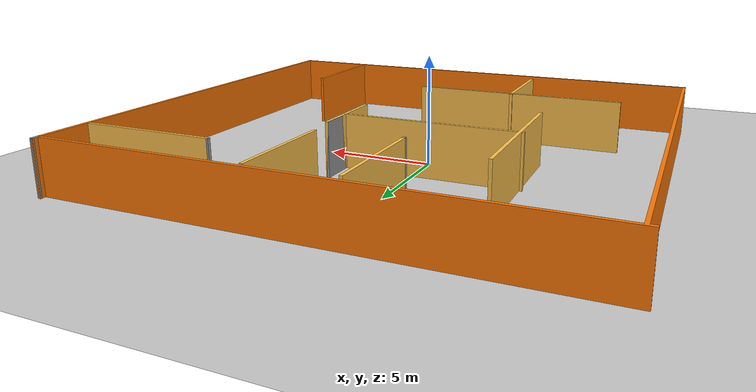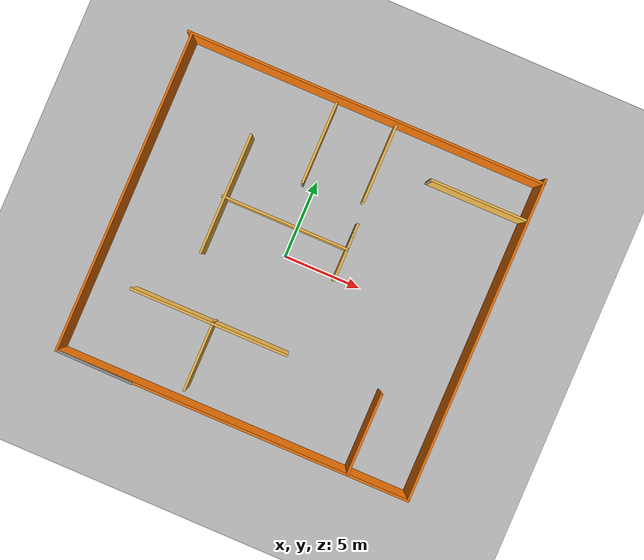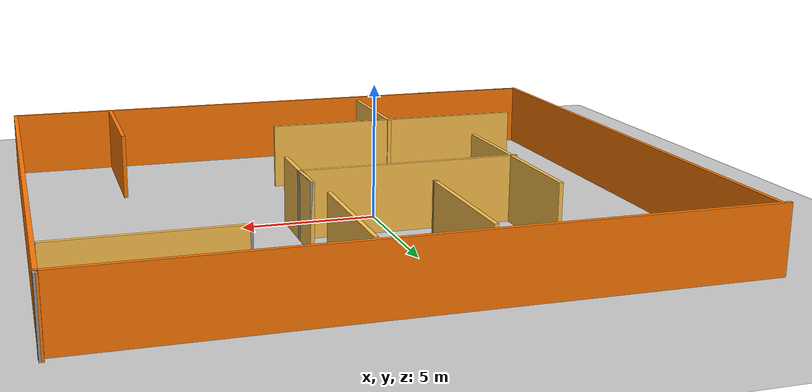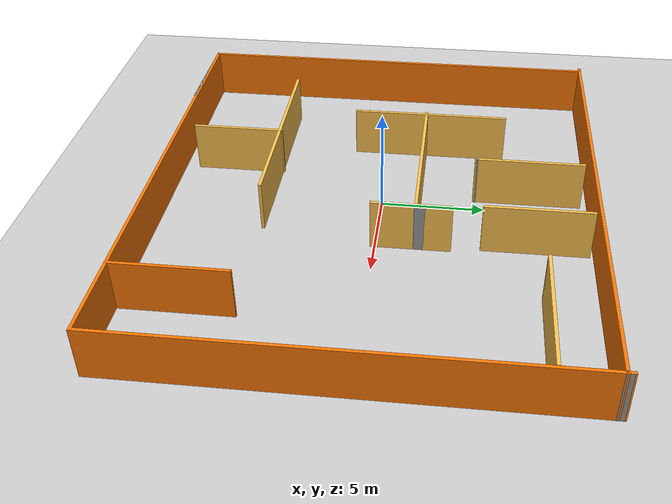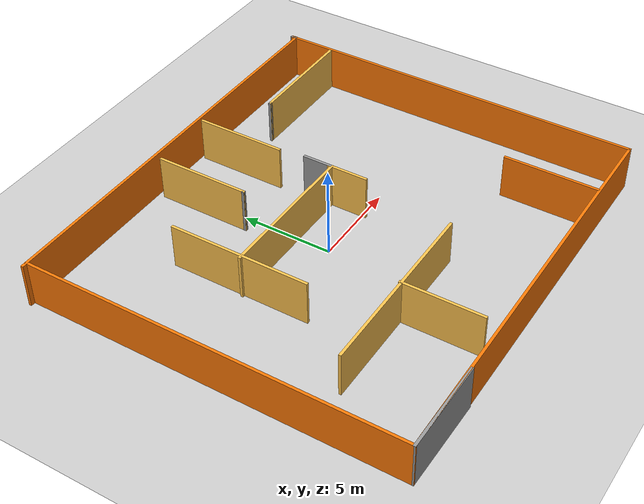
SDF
<sdf version="1.6">
 <world name="default">
  <light name="sun" type="directional">
   <pose>0 0 10 0 -0 0</pose>
   <diffuse>0.8 0.8 0.8 1</diffuse>
   <specular>0.2 0.2 0.2 1</specular>
   <attenuation>
    <range>1000</range>
    <constant>0.9</constant>
    <linear>0.01</linear>
    <quadratic>0.001</quadratic>
   </attenuation>
   <direction>-0.5 0.1 -0.9</direction>
  </light>
  <model name="ground_plane">
   <static>1</static>
   <link name="link">
    <collision name="collision">
     <geometry><plane><normal>0 0 1</normal><size>100 100</size></plane></geometry>
     <surface>
      <contact><collide_bitmask>65535</collide_bitmask></contact>
      <friction><ode><mu>100</mu><mu2>50</mu2></ode></friction>
     </surface>
    </collision>
    <visual name="visual">
     <cast_shadows>0</cast_shadows>
     <geometry><plane><normal>0 0 1</normal><size>100 100</size></plane></geometry>
     <material>
      <script><uri>file://media/materials/scripts/gazebo.material</uri><name>Gazebo/Grey</name></script>
     </material>
    </visual>
   </link>
  </model>
  <gravity>0 0 -9.8</gravity>
  <magnetic_field>6e-06 2.3e-05 -4.2e-05</magnetic_field>
  <atmosphere type="adiabatic"/>
  <physics name="default_physics" default="0" type="ode">
   <max_step_size>0.001</max_step_size>
   <real_time_factor>1</real_time_factor>
   <real_time_update_rate>1000</real_time_update_rate>
  </physics>
  <scene><ambient>0.4 0.4 0.4 1</ambient><background>0.7 0.7 0.7 1</background><shadows>1</shadows></scene>
  <audio><device>default</device></audio>
  <spherical_coordinates>
   <surface_model>EARTH_WGS84</surface_model>
   <latitude_deg>0</latitude_deg>
   <longitude_deg>0</longitude_deg>
   <elevation>0</elevation>
   <heading_deg>0</heading_deg>
  </spherical_coordinates>
  <model name="arena">
   <pose>1.00249 -0.130416 0 0 -0 0</pose>
   <link name="Wall_1">
    <collision name="Wall_1_Collision">
     <geometry><box><size>20.75 0.15 2.5</size></box></geometry>
     <pose>0 0 1.25 0 -0 0</pose>
    </collision>
    <visual name="Wall_1_Visual">
     <pose>0 0 1.25 0 -0 0</pose>
     <geometry><box><size>20.75 0.15 2.5</size></box></geometry>
     <material>
      <script><uri>file://media/materials/scripts/gazebo.material</uri><name>Gazebo/Grey</name></script>
      <ambient>0.996078 0.47451 0.0196078 1</ambient>
     </material>
     <meta><layer>0</layer></meta>
    </visual>
    <pose>-11.3115 -0.103584 0 0 -0 -1.5708</pose>
   </link>
   <link name="Wall_11">
    <collision name="Wall_11_Collision">
     <geometry><box><size>5.25 0.15 2.5</size></box></geometry>
     <pose>0 0 1.25 0 -0 0</pose>
    </collision>
    <visual name="Wall_11_Visual">
     <pose>0 0 1.25 0 -0 0</pose>
     <geometry><box><size>5.25 0.15 2.5</size></box></geometry>
     <material>
      <script><uri>file://media/materials/scripts/gazebo.material</uri><name>Gazebo/Grey</name></script>
      <ambient>0.996078 0.47451 0.0196078 1</ambient>
     </material>
     <meta><layer>0</layer></meta>
    </visual>
    <pose>7.59751 -7.77558 0 0 -0 1.5708</pose>
   </link>
   <link name="Wall_13">
    <collision name="Wall_13_Collision">
     <geometry><box><size>5 0.15 2.5</size></box></geometry>
     <pose>0 0 1.25 0 -0 0</pose>
    </collision>
    <visual name="Wall_13_Visual">
     <pose>0 0 1.25 0 -0 0</pose>
     <geometry><box><size>5 0.15 2.5</size></box></geometry>
     <material>
      <script><uri>file://media/materials/scripts/gazebo.material</uri><name>Gazebo/Grey</name></script>
      <ambient>1 0.764706 0.305882 1</ambient>
     </material>
     <meta><layer>0</layer></meta>
    </visual>
    <pose>2.05951 7.48142 0 0 -0 1.5708</pose>
   </link>
   <link name="Wall_19">
    <collision name="Wall_19_Collision">
     <geometry><box><size>0.16 0.15 2.5</size></box></geometry>
     <pose>0 0 1.25 0 -0 0</pose>
    </collision>
    <visual name="Wall_19_Visual">
     <pose>0 0 1.25 0 -0 0</pose>
     <geometry><box><size>0.16 0.15 2.5</size></box></geometry>
     <material>
      <script><uri>file://media/materials/scripts/gazebo.material</uri><name>Gazebo/Grey</name></script>
      <ambient>1 1 1 1</ambient>
     </material>
     <meta><layer>0</layer></meta>
    </visual>
    <pose>5.26441 7.7635 0 0 -0 -0.016544</pose>
   </link>
   <link name="Wall_20">
    <collision name="Wall_20_Collision">
     <geometry><box><size>6.25 0.15 2.5</size></box></geometry>
     <pose>0 0 1.25 0 -0 0</pose>
    </collision>
    <visual name="Wall_20_Visual">
     <pose>0 0 1.25 0 -0 0</pose>
     <geometry><box><size>6.25 0.15 2.5</size></box></geometry>
     <material>
      <script><uri>file://media/materials/scripts/gazebo.material</uri><name>Gazebo/Grey</name></script>
      <ambient>1 0.764706 0.305882 1</ambient>
     </material>
     <meta><layer>0</layer></meta>
    </visual>
    <pose>8.31951 7.76342 0 0 -0 0</pose>
   </link>
   <link name="Wall_22">
    <collision name="Wall_22_Collision">
     <geometry><box><size>7.75 0.15 2.5</size></box></geometry>
     <pose>0 0 1.25 0 -0 0</pose>
    </collision>
    <visual name="Wall_22_Visual">
     <pose>0 0 1.25 0 -0 0</pose>
     <geometry><box><size>7.75 0.15 2.5</size></box></geometry>
     <material>
      <script><uri>file://media/materials/scripts/gazebo.material</uri><name>Gazebo/Grey</name></script>
      <ambient>1 0.764706 0.305882 1</ambient>
     </material>
     <meta><layer>0</layer></meta>
    </visual>
    <pose>-5.69249 2.17942 0 0 -0 -1.5708</pose>
   </link>
   <link name="Wall_24">
    <collision name="Wall_24_Collision">
     <geometry><box><size>8.25 0.15 2.5</size></box></geometry>
     <pose>0 0 1.25 0 -0 0</pose>
    </collision>
    <visual name="Wall_24_Visual">
     <pose>0 0 1.25 0 -0 0</pose>
     <geometry><box><size>8.25 0.15 2.5</size></box></geometry>
     <material>
      <script><uri>file://media/materials/scripts/gazebo.material</uri><name>Gazebo/Grey</name></script>
      <ambient>1 0.764706 0.305882 1</ambient>
     </material>
     <meta><layer>0</layer></meta>
    </visual>
    <pose>-1.76549 1.98042 0 0 -0 0</pose>
   </link>
   <link name="Wall_25">
    <collision name="Wall_25_Collision">
     <geometry><box><size>1.75 0.15 2.5</size></box></geometry>
     <pose>0 0 1.25 0 -0 0</pose>
    </collision>
    <visual name="Wall_25_Visual">
     <pose>0 0 1.25 0 -0 0</pose>
     <geometry><box><size>1.75 0.15 2.5</size></box></geometry>
     <material>
      <script><uri>file://media/materials/scripts/gazebo.material</uri><name>Gazebo/Grey</name></script>
      <ambient>1 1 1 1</ambient>
     </material>
     <meta><layer>0</layer></meta>
    </visual>
    <pose>2.28451 2.78042 0 0 -0 1.5708</pose>
   </link>
   <link name="Wall_26">
    <collision name="Wall_26_Collision">
     <geometry><box><size>3.75 0.15 2.5</size></box></geometry>
     <pose>0 0 1.25 0 -0 0</pose>
    </collision>
    <visual name="Wall_26_Visual">
     <pose>0 0 1.25 0 -0 0</pose>
     <geometry><box><size>3.75 0.15 2.5</size></box></geometry>
     <material>
      <script><uri>file://media/materials/scripts/gazebo.material</uri><name>Gazebo/Grey</name></script>
      <ambient>1 0.764706 0.305882 1</ambient>
     </material>
     <meta><layer>0</layer></meta>
    </visual>
    <pose>2.28451 1.78042 0 0 -0 -1.5708</pose>
   </link>
   <link name="Wall_28">
    <collision name="Wall_28_Collision">
     <geometry><box><size>0.16 0.15 2.5</size></box></geometry>
     <pose>0 0 1.25 0 -0 0</pose>
    </collision>
    <visual name="Wall_28_Visual">
     <pose>0 0 1.25 0 -0 0</pose>
     <geometry><box><size>0.16 0.15 2.5</size></box></geometry>
     <material>
      <script><uri>file://media/materials/scripts/gazebo.material</uri><name>Gazebo/Grey</name></script>
      <ambient>1 1 1 1</ambient>
     </material>
     <meta><layer>0</layer></meta>
    </visual>
    <pose>-1.74968 4.62554 0 0 -0 -0.023803</pose>
   </link>
   <link name="Wall_29">
    <collision name="Wall_29_Collision">
     <geometry><box><size>5.25 0.15 2.5</size></box></geometry>
     <pose>0 0 1.25 0 -0 0</pose>
    </collision>
    <visual name="Wall_29_Visual">
     <pose>0 0 1.25 0 -0 0</pose>
     <geometry><box><size>5.25 0.15 2.5</size></box></geometry>
     <material>
      <script><uri>file://media/materials/scripts/gazebo.material</uri><name>Gazebo/Grey</name></script>
      <ambient>1 0.764706 0.305882 1</ambient>
     </material>
     <meta><layer>0</layer></meta>
    </visual>
    <pose>-1.74449 7.17542 0 0 -0 1.5708</pose>
   </link>
   <link name="Wall_3">
    <collision name="Wall_3_Collision">
     <geometry><box><size>5.03114 0.15 2.5</size></box></geometry>
     <pose>0 0 1.25 0 -0 0</pose>
    </collision>
    <visual name="Wall_3_Visual">
     <pose>0 0 1.25 0 -0 0</pose>
     <geometry><box><size>5.03114 0.15 2.5</size></box></geometry>
     <material>
      <script><uri>file://media/materials/scripts/gazebo.material</uri><name>Gazebo/Grey</name></script>
      <ambient>1 1 1 1</ambient>
     </material>
     <meta><layer>0</layer></meta>
    </visual>
    <pose>-8.87124 -10.4261 0 0 -0 3.13236</pose>
   </link>
   <link name="Wall_31">
    <collision name="Wall_31_Collision">
     <geometry><box><size>10.25 0.15 2.5</size></box></geometry>
     <pose>0 0 1.25 0 -0 0</pose>
    </collision>
    <visual name="Wall_31_Visual">
     <pose>0 0 1.25 0 -0 0</pose>
     <geometry><box><size>10.25 0.15 2.5</size></box></geometry>
     <material>
      <script><uri>file://media/materials/scripts/gazebo.material</uri><name>Gazebo/Grey</name></script>
      <ambient>1 0.764706 0.305882 1</ambient>
     </material>
     <meta><layer>0</layer></meta>
    </visual>
    <pose>-3.59649 -5.28058 0 0 -0 0</pose>
   </link>
   <link name="Wall_33">
    <collision name="Wall_33_Collision">
     <geometry><box><size>4.5 0.15 2.5</size></box></geometry>
     <pose>0 0 1.25 0 -0 0</pose>
    </collision>
    <visual name="Wall_33_Visual">
     <pose>0 0 1.25 0 -0 0</pose>
     <geometry><box><size>4.5 0.15 2.5</size></box></geometry>
     <material>
      <script><uri>file://media/materials/scripts/gazebo.material</uri><name>Gazebo/Grey</name></script>
      <ambient>1 0.764706 0.305882 1</ambient>
     </material>
     <meta><layer>0</layer></meta>
    </visual>
    <pose>-3.35449 -7.39358 0 0 -0 -1.5708</pose>
   </link>
   <link name="Wall_4">
    <collision name="Wall_4_Collision">
     <geometry><box><size>23 0.15 2.5</size></box></geometry>
     <pose>0 0 1.25 0 -0 0</pose>
    </collision>
    <visual name="Wall_4_Visual">
     <pose>0 0 1.25 0 -0 0</pose>
     <geometry><box><size>23 0.15 2.5</size></box></geometry>
     <material>
      <script><uri>file://media/materials/scripts/gazebo.material</uri><name>Gazebo/Grey</name></script>
      <ambient>0.996078 0.47451 0.0196078 1</ambient>
     </material>
     <meta><layer>0</layer></meta>
    </visual>
    <pose>0.113509 -10.4036 0 0 -0 0</pose>
   </link>
   <link name="Wall_5">
    <collision name="Wall_5_Collision">
     <geometry><box><size>21 0.15 2.5</size></box></geometry>
     <pose>0 0 1.25 0 -0 0</pose>
    </collision>
    <visual name="Wall_5_Visual">
     <pose>0 0 1.25 0 -0 0</pose>
     <geometry><box><size>21 0.15 2.5</size></box></geometry>
     <material>
      <script><uri>file://media/materials/scripts/gazebo.material</uri><name>Gazebo/Grey</name></script>
      <ambient>0.996078 0.47451 0.0196078 1</ambient>
     </material>
     <meta><layer>0</layer></meta>
    </visual>
    <pose>11.5385 0.021416 0 0 -0 1.5708</pose>
   </link>
   <link name="Wall_6">
    <collision name="Wall_6_Collision">
     <geometry><box><size>0.39612 0.15 2.5</size></box></geometry>
     <pose>0 0 1.25 0 -0 0</pose>
    </collision>
    <visual name="Wall_6_Visual">
     <pose>0 0 1.25 0 -0 0</pose>
     <geometry><box><size>0.39612 0.15 2.5</size></box></geometry>
     <material>
      <script><uri>file://media/materials/scripts/gazebo.material</uri><name>Gazebo/Grey</name></script>
      <ambient>1 1 1 1</ambient>
     </material>
     <meta><layer>0</layer></meta>
    </visual>
    <pose>11.5435 10.3234 0 0 -0 -1.53017</pose>
   </link>
   <link name="Wall_7">
    <collision name="Wall_7_Collision">
     <geometry><box><size>23.25 0.15 2.5</size></box></geometry>
     <pose>0 0 1.25 0 -0 0</pose>
    </collision>
    <visual name="Wall_7_Visual">
     <pose>0 0 1.25 0 -0 0</pose>
     <geometry><box><size>23.25 0.15 2.5</size></box></geometry>
     <material>
      <script><uri>file://media/materials/scripts/gazebo.material</uri><name>Gazebo/Grey</name></script>
      <ambient>0.996078 0.47451 0.0196078 1</ambient>
     </material>
     <meta><layer>0</layer></meta>
    </visual>
    <pose>-0.001491 10.2004 0 0 -0 3.14159</pose>
   </link>
   <static>1</static>
  </model>
 </world>
</sdf>
